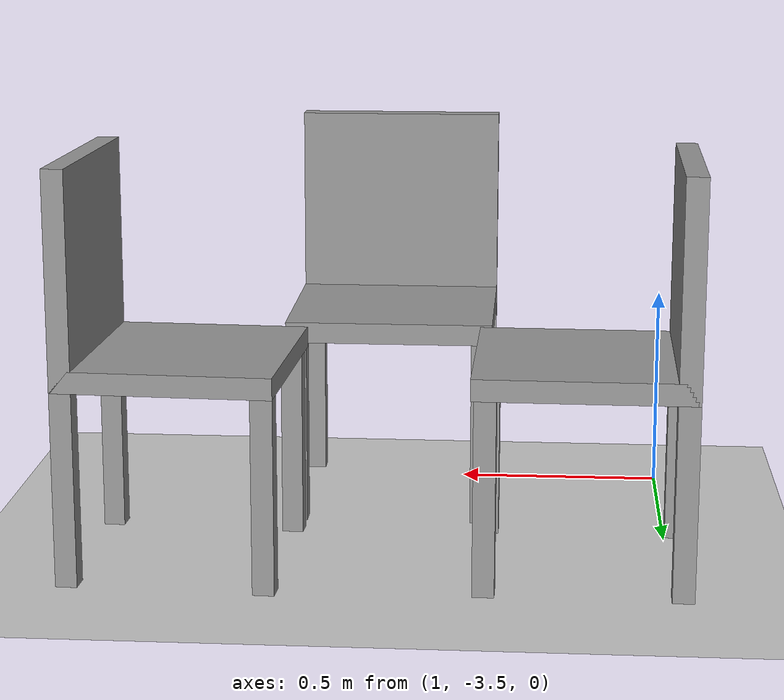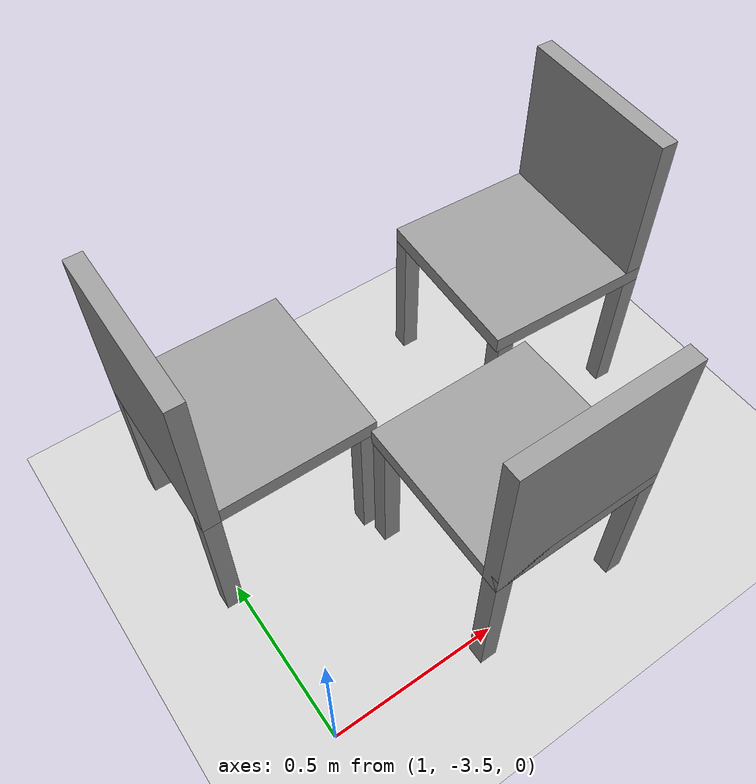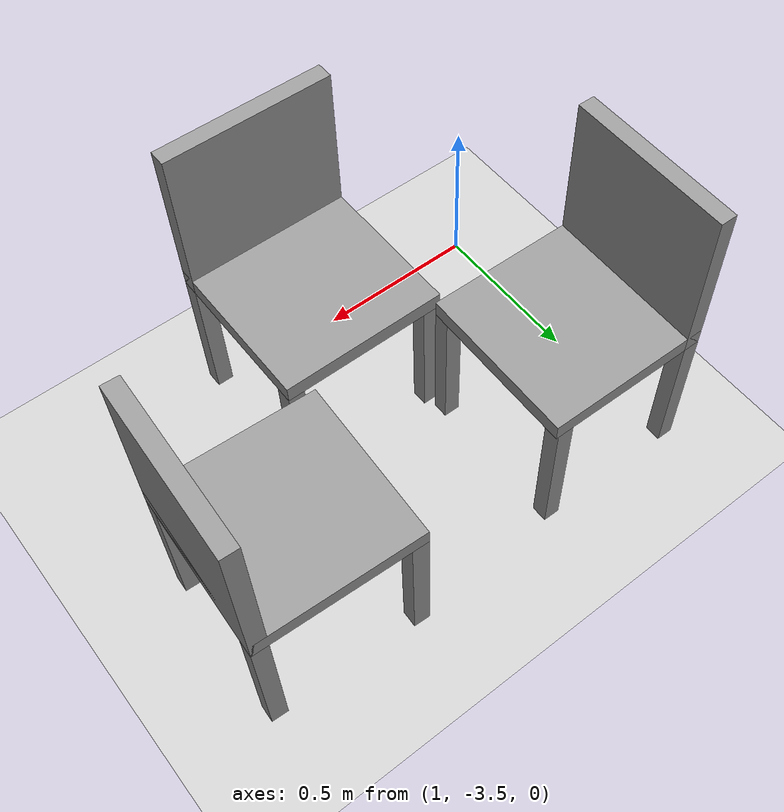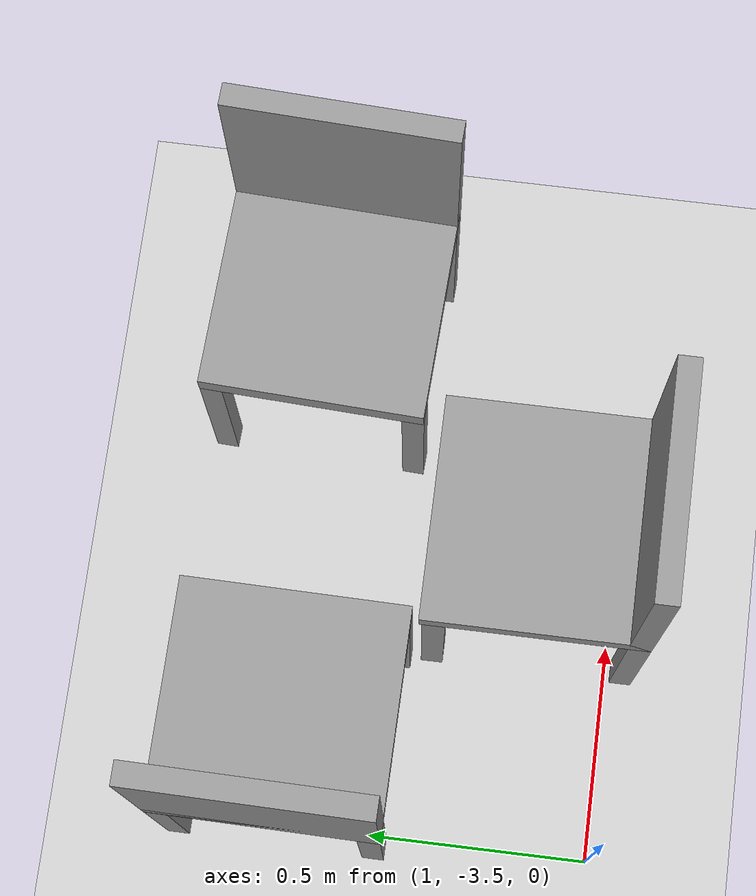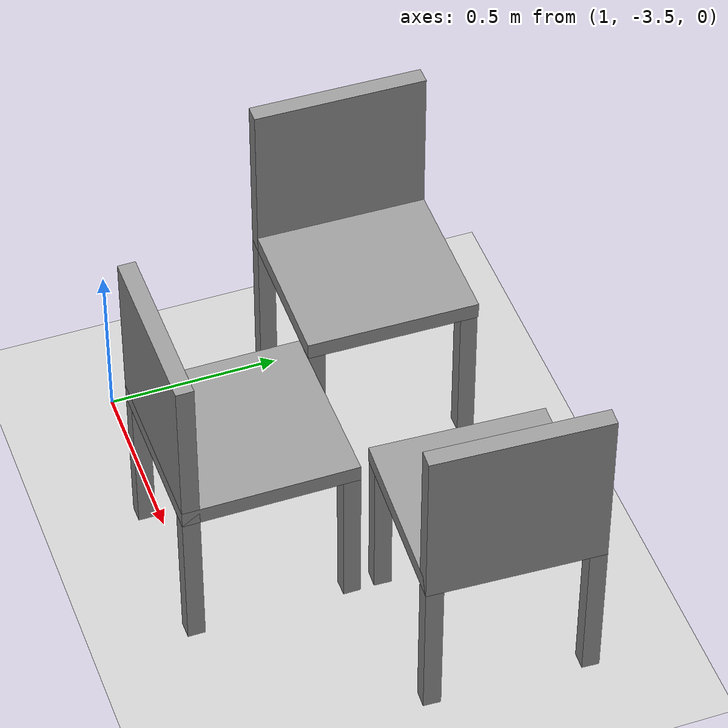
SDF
<sdf version="1.6">
 <world name="default">
  <model name="ground_plane">
   <static>1</static>
   <link name="link">
    <collision name="collision">
     <geometry><plane><normal>0 0 1</normal><size>100 100</size></plane></geometry>
     <surface><friction><ode><mu>100</mu><mu2>50</mu2></ode></friction></surface>
    </collision>
    <visual name="visual">
     <cast_shadows>0</cast_shadows>
     <geometry><plane><normal>0 0 1</normal><size>100 100</size></plane></geometry>
     <material>
      <script><uri>file://media/materials/scripts/gazebo.material</uri><name>Gazebo/Grey</name></script>
     </material>
    </visual>
   </link>
  </model>
  <model name="Chair">
   <link name="link_5">
    <pose>-0.225 0.256445 -0.120833 0 -0 0</pose>
    <inertial>
     <mass>1</mass>
     <inertia>
      <ixx>0.166667</ixx>
      <ixy>0</ixy>
      <ixz>0</ixz>
      <iyy>0.166667</iyy>
      <iyz>0</iyz>
      <izz>0.166667</izz>
     </inertia>
    </inertial>
    <visual name="visual">
     <geometry><box><size>0.05 0.05 0.45</size></box></geometry>
     <material>
      <lighting>1</lighting>
      <script><uri>file://media/materials/scripts/gazebo.material</uri><name>Gazebo/Grey</name></script>
      <ambient>0.3 0.3 0.3 1</ambient>
      <diffuse>0.7 0.7 0.7 1</diffuse>
      <specular>0.01 0.01 0.01 1</specular>
      <emissive>0 0 0 1</emissive>
      <shader type="vertex"><normal_map>__default__</normal_map></shader>
     </material>
    </visual>
    <collision name="collision">
     <geometry><box><size>0.05 0.05 0.45</size></box></geometry>
     <surface>
      <friction>
       <ode><mu>1</mu><mu2>1</mu2><fdir1>0 0 0</fdir1><slip1>0</slip1><slip2>0</slip2></ode>
       <torsional>
        <coefficient>1</coefficient>
        <patch_radius>0</patch_radius>
        <surface_radius>0</surface_radius>
        <use_patch_radius>1</use_patch_radius>
        <ode><slip>0</slip></ode>
       </torsional>
      </friction>
      <bounce><restitution_coefficient>0</restitution_coefficient><threshold>1e+06</threshold></bounce>
      <contact>
       <collide_without_contact>0</collide_without_contact>
       <collide_without_contact_bitmask>1</collide_without_contact_bitmask>
       <collide_bitmask>1</collide_bitmask>
       <ode>
        <soft_cfm>0</soft_cfm>
        <soft_erp>0.2</soft_erp>
        <kp>1e+13</kp>
        <kd>1</kd>
        <max_vel>0.01</max_vel>
        <min_depth>0</min_depth>
       </ode>
       <bullet>
        <split_impulse>1</split_impulse>
        <split_impulse_penetration_threshold>-0.01</split_impulse_penetration_threshold>
        <soft_cfm>0</soft_cfm>
        <soft_erp>0.2</soft_erp>
        <kp>1e+13</kp>
        <kd>1</kd>
       </bullet>
      </contact>
     </surface>
    </collision>
   </link>
   <link name="link_5_clone">
    <pose>0.225 0.263711 -0.120833 0 -0 0</pose>
    <inertial>
     <mass>1</mass>
     <inertia>
      <ixx>0.166667</ixx>
      <ixy>0</ixy>
      <ixz>0</ixz>
      <iyy>0.166667</iyy>
      <iyz>0</iyz>
      <izz>0.166667</izz>
     </inertia>
    </inertial>
    <visual name="visual">
     <geometry><box><size>0.05 0.05 0.45</size></box></geometry>
     <material>
      <lighting>1</lighting>
      <script><uri>file://media/materials/scripts/gazebo.material</uri><name>Gazebo/Grey</name></script>
      <ambient>0.3 0.3 0.3 1</ambient>
      <diffuse>0.7 0.7 0.7 1</diffuse>
      <specular>0.01 0.01 0.01 1</specular>
      <emissive>0 0 0 1</emissive>
      <shader type="vertex"><normal_map>__default__</normal_map></shader>
     </material>
    </visual>
    <collision name="collision">
     <geometry><box><size>0.05 0.05 0.45</size></box></geometry>
     <surface>
      <friction>
       <ode><mu>1</mu><mu2>1</mu2><fdir1>0 0 0</fdir1><slip1>0</slip1><slip2>0</slip2></ode>
       <torsional>
        <coefficient>1</coefficient>
        <patch_radius>0</patch_radius>
        <surface_radius>0</surface_radius>
        <use_patch_radius>1</use_patch_radius>
        <ode><slip>0</slip></ode>
       </torsional>
      </friction>
      <bounce><restitution_coefficient>0</restitution_coefficient><threshold>1e+06</threshold></bounce>
      <contact>
       <collide_without_contact>0</collide_without_contact>
       <collide_without_contact_bitmask>1</collide_without_contact_bitmask>
       <collide_bitmask>1</collide_bitmask>
       <ode>
        <soft_cfm>0</soft_cfm>
        <soft_erp>0.2</soft_erp>
        <kp>1e+13</kp>
        <kd>1</kd>
        <max_vel>0.01</max_vel>
        <min_depth>0</min_depth>
       </ode>
       <bullet>
        <split_impulse>1</split_impulse>
        <split_impulse_penetration_threshold>-0.01</split_impulse_penetration_threshold>
        <soft_cfm>0</soft_cfm>
        <soft_erp>0.2</soft_erp>
        <kp>1e+13</kp>
        <kd>1</kd>
       </bullet>
      </contact>
     </surface>
    </collision>
   </link>
   <link name="link_5_clone_0">
    <pose>0.225 -0.186289 -0.120833 0 -0 0</pose>
    <inertial>
     <mass>1</mass>
     <inertia>
      <ixx>0.166667</ixx>
      <ixy>0</ixy>
      <ixz>0</ixz>
      <iyy>0.166667</iyy>
      <iyz>0</iyz>
      <izz>0.166667</izz>
     </inertia>
    </inertial>
    <visual name="visual">
     <geometry><box><size>0.05 0.05 0.45</size></box></geometry>
     <material>
      <lighting>1</lighting>
      <script><uri>file://media/materials/scripts/gazebo.material</uri><name>Gazebo/Grey</name></script>
      <ambient>0.3 0.3 0.3 1</ambient>
      <diffuse>0.7 0.7 0.7 1</diffuse>
      <specular>0.01 0.01 0.01 1</specular>
      <emissive>0 0 0 1</emissive>
      <shader type="vertex"><normal_map>__default__</normal_map></shader>
     </material>
    </visual>
    <collision name="collision">
     <geometry><box><size>0.05 0.05 0.45</size></box></geometry>
     <surface>
      <friction>
       <ode><mu>1</mu><mu2>1</mu2><fdir1>0 0 0</fdir1><slip1>0</slip1><slip2>0</slip2></ode>
       <torsional>
        <coefficient>1</coefficient>
        <patch_radius>0</patch_radius>
        <surface_radius>0</surface_radius>
        <use_patch_radius>1</use_patch_radius>
        <ode><slip>0</slip></ode>
       </torsional>
      </friction>
      <bounce><restitution_coefficient>0</restitution_coefficient><threshold>1e+06</threshold></bounce>
      <contact>
       <collide_without_contact>0</collide_without_contact>
       <collide_without_contact_bitmask>1</collide_without_contact_bitmask>
       <collide_bitmask>1</collide_bitmask>
       <ode>
        <soft_cfm>0</soft_cfm>
        <soft_erp>0.2</soft_erp>
        <kp>1e+13</kp>
        <kd>1</kd>
        <max_vel>0.01</max_vel>
        <min_depth>0</min_depth>
       </ode>
       <bullet>
        <split_impulse>1</split_impulse>
        <split_impulse_penetration_threshold>-0.01</split_impulse_penetration_threshold>
        <soft_cfm>0</soft_cfm>
        <soft_erp>0.2</soft_erp>
        <kp>1e+13</kp>
        <kd>1</kd>
       </bullet>
      </contact>
     </surface>
    </collision>
   </link>
   <link name="link_5_clone_1">
    <pose>-0.225 -0.186289 -0.120833 0 -0 0</pose>
    <inertial>
     <mass>1</mass>
     <inertia>
      <ixx>0.166667</ixx>
      <ixy>0</ixy>
      <ixz>0</ixz>
      <iyy>0.166667</iyy>
      <iyz>0</iyz>
      <izz>0.166667</izz>
     </inertia>
    </inertial>
    <visual name="visual">
     <geometry><box><size>0.05 0.05 0.45</size></box></geometry>
     <material>
      <lighting>1</lighting>
      <script><uri>file://media/materials/scripts/gazebo.material</uri><name>Gazebo/Grey</name></script>
      <ambient>0.3 0.3 0.3 1</ambient>
      <diffuse>0.7 0.7 0.7 1</diffuse>
      <specular>0.01 0.01 0.01 1</specular>
      <emissive>0 0 0 1</emissive>
      <shader type="vertex"><normal_map>__default__</normal_map></shader>
     </material>
    </visual>
    <collision name="collision">
     <geometry><box><size>0.05 0.05 0.45</size></box></geometry>
     <surface>
      <friction>
       <ode><mu>1</mu><mu2>1</mu2><fdir1>0 0 0</fdir1><slip1>0</slip1><slip2>0</slip2></ode>
       <torsional>
        <coefficient>1</coefficient>
        <patch_radius>0</patch_radius>
        <surface_radius>0</surface_radius>
        <use_patch_radius>1</use_patch_radius>
        <ode><slip>0</slip></ode>
       </torsional>
      </friction>
      <bounce><restitution_coefficient>0</restitution_coefficient><threshold>1e+06</threshold></bounce>
      <contact>
       <collide_without_contact>0</collide_without_contact>
       <collide_without_contact_bitmask>1</collide_without_contact_bitmask>
       <collide_bitmask>1</collide_bitmask>
       <ode>
        <soft_cfm>0</soft_cfm>
        <soft_erp>0.2</soft_erp>
        <kp>1e+13</kp>
        <kd>1</kd>
        <max_vel>0.01</max_vel>
        <min_depth>0</min_depth>
       </ode>
       <bullet>
        <split_impulse>1</split_impulse>
        <split_impulse_penetration_threshold>-0.01</split_impulse_penetration_threshold>
        <soft_cfm>0</soft_cfm>
        <soft_erp>0.2</soft_erp>
        <kp>1e+13</kp>
        <kd>1</kd>
       </bullet>
      </contact>
     </surface>
    </collision>
   </link>
   <link name="link_7">
    <pose>-0 -0.186289 0.354167 0 -0 0</pose>
    <inertial>
     <mass>1</mass>
     <inertia>
      <ixx>0.166667</ixx>
      <ixy>0</ixy>
      <ixz>0</ixz>
      <iyy>0.166667</iyy>
      <iyz>0</iyz>
      <izz>0.166667</izz>
     </inertia>
    </inertial>
    <visual name="visual">
     <geometry><box><size>0.5 0.05 0.5</size></box></geometry>
     <material>
      <lighting>1</lighting>
      <script><uri>file://media/materials/scripts/gazebo.material</uri><name>Gazebo/Grey</name></script>
      <ambient>0.3 0.3 0.3 1</ambient>
      <diffuse>0.7 0.7 0.7 1</diffuse>
      <specular>0.01 0.01 0.01 1</specular>
      <emissive>0 0 0 1</emissive>
      <shader type="vertex"><normal_map>__default__</normal_map></shader>
     </material>
    </visual>
    <collision name="collision">
     <geometry><box><size>0.5 0.05 0.5</size></box></geometry>
     <surface>
      <friction>
       <ode><mu>1</mu><mu2>1</mu2><fdir1>0 0 0</fdir1><slip1>0</slip1><slip2>0</slip2></ode>
       <torsional>
        <coefficient>1</coefficient>
        <patch_radius>0</patch_radius>
        <surface_radius>0</surface_radius>
        <use_patch_radius>1</use_patch_radius>
        <ode><slip>0</slip></ode>
       </torsional>
      </friction>
      <bounce><restitution_coefficient>0</restitution_coefficient><threshold>1e+06</threshold></bounce>
      <contact>
       <collide_without_contact>0</collide_without_contact>
       <collide_without_contact_bitmask>1</collide_without_contact_bitmask>
       <collide_bitmask>1</collide_bitmask>
       <ode>
        <soft_cfm>0</soft_cfm>
        <soft_erp>0.2</soft_erp>
        <kp>1e+13</kp>
        <kd>1</kd>
        <max_vel>0.01</max_vel>
        <min_depth>0</min_depth>
       </ode>
       <bullet>
        <split_impulse>1</split_impulse>
        <split_impulse_penetration_threshold>-0.01</split_impulse_penetration_threshold>
        <soft_cfm>0</soft_cfm>
        <soft_erp>0.2</soft_erp>
        <kp>1e+13</kp>
        <kd>1</kd>
       </bullet>
      </contact>
     </surface>
    </collision>
   </link>
   <link name="link_8">
    <pose>-0 0.038711 0.129167 0 -0 0</pose>
    <inertial>
     <mass>1</mass>
     <inertia>
      <ixx>0.166667</ixx>
      <ixy>0</ixy>
      <ixz>0</ixz>
      <iyy>0.166667</iyy>
      <iyz>0</iyz>
      <izz>0.166667</izz>
     </inertia>
    </inertial>
    <visual name="visual">
     <geometry><box><size>0.5 0.5 0.05</size></box></geometry>
     <material>
      <lighting>1</lighting>
      <script><uri>file://media/materials/scripts/gazebo.material</uri><name>Gazebo/Grey</name></script>
      <ambient>0.3 0.3 0.3 1</ambient>
      <diffuse>0.7 0.7 0.7 1</diffuse>
      <specular>0.01 0.01 0.01 1</specular>
      <emissive>0 0 0 1</emissive>
      <shader type="vertex"><normal_map>__default__</normal_map></shader>
     </material>
    </visual>
    <collision name="collision">
     <geometry><box><size>0.5 0.5 0.05</size></box></geometry>
     <surface>
      <friction>
       <ode><mu>1</mu><mu2>1</mu2><fdir1>0 0 0</fdir1><slip1>0</slip1><slip2>0</slip2></ode>
       <torsional>
        <coefficient>1</coefficient>
        <patch_radius>0</patch_radius>
        <surface_radius>0</surface_radius>
        <use_patch_radius>1</use_patch_radius>
        <ode><slip>0</slip></ode>
       </torsional>
      </friction>
      <bounce><restitution_coefficient>0</restitution_coefficient><threshold>1e+06</threshold></bounce>
      <contact>
       <collide_without_contact>0</collide_without_contact>
       <collide_without_contact_bitmask>1</collide_without_contact_bitmask>
       <collide_bitmask>1</collide_bitmask>
       <ode>
        <soft_cfm>0</soft_cfm>
        <soft_erp>0.2</soft_erp>
        <kp>1e+13</kp>
        <kd>1</kd>
        <max_vel>0.01</max_vel>
        <min_depth>0</min_depth>
       </ode>
       <bullet>
        <split_impulse>1</split_impulse>
        <split_impulse_penetration_threshold>-0.01</split_impulse_penetration_threshold>
        <soft_cfm>0</soft_cfm>
        <soft_erp>0.2</soft_erp>
        <kp>1e+13</kp>
        <kd>1</kd>
       </bullet>
      </contact>
     </surface>
    </collision>
   </link>
   <joint name="link_8_JOINT_15" type="fixed">
    <parent>link_8</parent>
    <child>link_5_clone</child>
    <physics>
     <ode><limit><cfm>0</cfm><erp>0.2</erp></limit><suspension><cfm>0</cfm><erp>0.2</erp></suspension></ode>
    </physics>
   </joint>
   <joint name="link_8_JOINT_16" type="fixed">
    <parent>link_8</parent>
    <child>link_5</child>
    <physics>
     <ode><limit><cfm>0</cfm><erp>0.2</erp></limit><suspension><cfm>0</cfm><erp>0.2</erp></suspension></ode>
    </physics>
   </joint>
   <joint name="link_8_JOINT_17" type="fixed">
    <parent>link_8</parent>
    <child>link_5</child>
    <physics>
     <ode><limit><cfm>0</cfm><erp>0.2</erp></limit><suspension><cfm>0</cfm><erp>0.2</erp></suspension></ode>
    </physics>
   </joint>
   <joint name="link_8_JOINT_18" type="fixed">
    <parent>link_8</parent>
    <child>link_5_clone_0</child>
    <physics>
     <ode><limit><cfm>0</cfm><erp>0.2</erp></limit><suspension><cfm>0</cfm><erp>0.2</erp></suspension></ode>
    </physics>
   </joint>
   <joint name="link_8_JOINT_19" type="fixed">
    <parent>link_8</parent>
    <child>link_5_clone_1</child>
    <physics>
     <ode><limit><cfm>0</cfm><erp>0.2</erp></limit><suspension><cfm>0</cfm><erp>0.2</erp></suspension></ode>
    </physics>
   </joint>
   <joint name="link_8_JOINT_20" type="fixed">
    <parent>link_8</parent>
    <child>link_7</child>
    <physics>
     <ode><limit><cfm>0</cfm><erp>0.2</erp></limit><suspension><cfm>0</cfm><erp>0.2</erp></suspension></ode>
    </physics>
   </joint>
   <static>0</static>
   <pose>1.67011 -3.35271 0.353802 0 -0 0</pose>
  </model>
  <model name="Chair_clone">
   <link name="link_5">
    <pose>-0.225 0.256445 -0.120833 0 -0 0</pose>
    <inertial>
     <mass>1</mass>
     <inertia>
      <ixx>0.166667</ixx>
      <ixy>0</ixy>
      <ixz>0</ixz>
      <iyy>0.166667</iyy>
      <iyz>0</iyz>
      <izz>0.166667</izz>
     </inertia>
    </inertial>
    <visual name="visual">
     <geometry><box><size>0.05 0.05 0.45</size></box></geometry>
     <material>
      <lighting>1</lighting>
      <script><uri>file://media/materials/scripts/gazebo.material</uri><name>Gazebo/Grey</name></script>
      <ambient>0.3 0.3 0.3 1</ambient>
      <diffuse>0.7 0.7 0.7 1</diffuse>
      <specular>0.01 0.01 0.01 1</specular>
      <emissive>0 0 0 1</emissive>
      <shader type="vertex"><normal_map>__default__</normal_map></shader>
     </material>
    </visual>
    <collision name="collision">
     <geometry><box><size>0.05 0.05 0.45</size></box></geometry>
     <surface>
      <friction>
       <ode><mu>1</mu><mu2>1</mu2><fdir1>0 0 0</fdir1><slip1>0</slip1><slip2>0</slip2></ode>
       <torsional>
        <coefficient>1</coefficient>
        <patch_radius>0</patch_radius>
        <surface_radius>0</surface_radius>
        <use_patch_radius>1</use_patch_radius>
        <ode><slip>0</slip></ode>
       </torsional>
      </friction>
      <bounce><restitution_coefficient>0</restitution_coefficient><threshold>1e+06</threshold></bounce>
      <contact>
       <collide_without_contact>0</collide_without_contact>
       <collide_without_contact_bitmask>1</collide_without_contact_bitmask>
       <collide_bitmask>1</collide_bitmask>
       <ode>
        <soft_cfm>0</soft_cfm>
        <soft_erp>0.2</soft_erp>
        <kp>1e+13</kp>
        <kd>1</kd>
        <max_vel>0.01</max_vel>
        <min_depth>0</min_depth>
       </ode>
       <bullet>
        <split_impulse>1</split_impulse>
        <split_impulse_penetration_threshold>-0.01</split_impulse_penetration_threshold>
        <soft_cfm>0</soft_cfm>
        <soft_erp>0.2</soft_erp>
        <kp>1e+13</kp>
        <kd>1</kd>
       </bullet>
      </contact>
     </surface>
    </collision>
   </link>
   <link name="link_5_clone">
    <pose>0.225 0.263711 -0.120833 0 -0 0</pose>
    <inertial>
     <mass>1</mass>
     <inertia>
      <ixx>0.166667</ixx>
      <ixy>0</ixy>
      <ixz>0</ixz>
      <iyy>0.166667</iyy>
      <iyz>0</iyz>
      <izz>0.166667</izz>
     </inertia>
    </inertial>
    <visual name="visual">
     <geometry><box><size>0.05 0.05 0.45</size></box></geometry>
     <material>
      <lighting>1</lighting>
      <script><uri>file://media/materials/scripts/gazebo.material</uri><name>Gazebo/Grey</name></script>
      <ambient>0.3 0.3 0.3 1</ambient>
      <diffuse>0.7 0.7 0.7 1</diffuse>
      <specular>0.01 0.01 0.01 1</specular>
      <emissive>0 0 0 1</emissive>
      <shader type="vertex"><normal_map>__default__</normal_map></shader>
     </material>
    </visual>
    <collision name="collision">
     <geometry><box><size>0.05 0.05 0.45</size></box></geometry>
     <surface>
      <friction>
       <ode><mu>1</mu><mu2>1</mu2><fdir1>0 0 0</fdir1><slip1>0</slip1><slip2>0</slip2></ode>
       <torsional>
        <coefficient>1</coefficient>
        <patch_radius>0</patch_radius>
        <surface_radius>0</surface_radius>
        <use_patch_radius>1</use_patch_radius>
        <ode><slip>0</slip></ode>
       </torsional>
      </friction>
      <bounce><restitution_coefficient>0</restitution_coefficient><threshold>1e+06</threshold></bounce>
      <contact>
       <collide_without_contact>0</collide_without_contact>
       <collide_without_contact_bitmask>1</collide_without_contact_bitmask>
       <collide_bitmask>1</collide_bitmask>
       <ode>
        <soft_cfm>0</soft_cfm>
        <soft_erp>0.2</soft_erp>
        <kp>1e+13</kp>
        <kd>1</kd>
        <max_vel>0.01</max_vel>
        <min_depth>0</min_depth>
       </ode>
       <bullet>
        <split_impulse>1</split_impulse>
        <split_impulse_penetration_threshold>-0.01</split_impulse_penetration_threshold>
        <soft_cfm>0</soft_cfm>
        <soft_erp>0.2</soft_erp>
        <kp>1e+13</kp>
        <kd>1</kd>
       </bullet>
      </contact>
     </surface>
    </collision>
   </link>
   <link name="link_5_clone_0">
    <pose>0.225 -0.186289 -0.120833 0 -0 0</pose>
    <inertial>
     <mass>1</mass>
     <inertia>
      <ixx>0.166667</ixx>
      <ixy>0</ixy>
      <ixz>0</ixz>
      <iyy>0.166667</iyy>
      <iyz>0</iyz>
      <izz>0.166667</izz>
     </inertia>
    </inertial>
    <visual name="visual">
     <geometry><box><size>0.05 0.05 0.45</size></box></geometry>
     <material>
      <lighting>1</lighting>
      <script><uri>file://media/materials/scripts/gazebo.material</uri><name>Gazebo/Grey</name></script>
      <ambient>0.3 0.3 0.3 1</ambient>
      <diffuse>0.7 0.7 0.7 1</diffuse>
      <specular>0.01 0.01 0.01 1</specular>
      <emissive>0 0 0 1</emissive>
      <shader type="vertex"><normal_map>__default__</normal_map></shader>
     </material>
    </visual>
    <collision name="collision">
     <geometry><box><size>0.05 0.05 0.45</size></box></geometry>
     <surface>
      <friction>
       <ode><mu>1</mu><mu2>1</mu2><fdir1>0 0 0</fdir1><slip1>0</slip1><slip2>0</slip2></ode>
       <torsional>
        <coefficient>1</coefficient>
        <patch_radius>0</patch_radius>
        <surface_radius>0</surface_radius>
        <use_patch_radius>1</use_patch_radius>
        <ode><slip>0</slip></ode>
       </torsional>
      </friction>
      <bounce><restitution_coefficient>0</restitution_coefficient><threshold>1e+06</threshold></bounce>
      <contact>
       <collide_without_contact>0</collide_without_contact>
       <collide_without_contact_bitmask>1</collide_without_contact_bitmask>
       <collide_bitmask>1</collide_bitmask>
       <ode>
        <soft_cfm>0</soft_cfm>
        <soft_erp>0.2</soft_erp>
        <kp>1e+13</kp>
        <kd>1</kd>
        <max_vel>0.01</max_vel>
        <min_depth>0</min_depth>
       </ode>
       <bullet>
        <split_impulse>1</split_impulse>
        <split_impulse_penetration_threshold>-0.01</split_impulse_penetration_threshold>
        <soft_cfm>0</soft_cfm>
        <soft_erp>0.2</soft_erp>
        <kp>1e+13</kp>
        <kd>1</kd>
       </bullet>
      </contact>
     </surface>
    </collision>
   </link>
   <link name="link_5_clone_1">
    <pose>-0.225 -0.186289 -0.120833 0 -0 0</pose>
    <inertial>
     <mass>1</mass>
     <inertia>
      <ixx>0.166667</ixx>
      <ixy>0</ixy>
      <ixz>0</ixz>
      <iyy>0.166667</iyy>
      <iyz>0</iyz>
      <izz>0.166667</izz>
     </inertia>
    </inertial>
    <visual name="visual">
     <geometry><box><size>0.05 0.05 0.45</size></box></geometry>
     <material>
      <lighting>1</lighting>
      <script><uri>file://media/materials/scripts/gazebo.material</uri><name>Gazebo/Grey</name></script>
      <ambient>0.3 0.3 0.3 1</ambient>
      <diffuse>0.7 0.7 0.7 1</diffuse>
      <specular>0.01 0.01 0.01 1</specular>
      <emissive>0 0 0 1</emissive>
      <shader type="vertex"><normal_map>__default__</normal_map></shader>
     </material>
    </visual>
    <collision name="collision">
     <geometry><box><size>0.05 0.05 0.45</size></box></geometry>
     <surface>
      <friction>
       <ode><mu>1</mu><mu2>1</mu2><fdir1>0 0 0</fdir1><slip1>0</slip1><slip2>0</slip2></ode>
       <torsional>
        <coefficient>1</coefficient>
        <patch_radius>0</patch_radius>
        <surface_radius>0</surface_radius>
        <use_patch_radius>1</use_patch_radius>
        <ode><slip>0</slip></ode>
       </torsional>
      </friction>
      <bounce><restitution_coefficient>0</restitution_coefficient><threshold>1e+06</threshold></bounce>
      <contact>
       <collide_without_contact>0</collide_without_contact>
       <collide_without_contact_bitmask>1</collide_without_contact_bitmask>
       <collide_bitmask>1</collide_bitmask>
       <ode>
        <soft_cfm>0</soft_cfm>
        <soft_erp>0.2</soft_erp>
        <kp>1e+13</kp>
        <kd>1</kd>
        <max_vel>0.01</max_vel>
        <min_depth>0</min_depth>
       </ode>
       <bullet>
        <split_impulse>1</split_impulse>
        <split_impulse_penetration_threshold>-0.01</split_impulse_penetration_threshold>
        <soft_cfm>0</soft_cfm>
        <soft_erp>0.2</soft_erp>
        <kp>1e+13</kp>
        <kd>1</kd>
       </bullet>
      </contact>
     </surface>
    </collision>
   </link>
   <link name="link_7">
    <pose>-0 -0.186289 0.354167 0 -0 0</pose>
    <inertial>
     <mass>1</mass>
     <inertia>
      <ixx>0.166667</ixx>
      <ixy>0</ixy>
      <ixz>0</ixz>
      <iyy>0.166667</iyy>
      <iyz>0</iyz>
      <izz>0.166667</izz>
     </inertia>
    </inertial>
    <visual name="visual">
     <geometry><box><size>0.5 0.05 0.5</size></box></geometry>
     <material>
      <lighting>1</lighting>
      <script><uri>file://media/materials/scripts/gazebo.material</uri><name>Gazebo/Grey</name></script>
      <ambient>0.3 0.3 0.3 1</ambient>
      <diffuse>0.7 0.7 0.7 1</diffuse>
      <specular>0.01 0.01 0.01 1</specular>
      <emissive>0 0 0 1</emissive>
      <shader type="vertex"><normal_map>__default__</normal_map></shader>
     </material>
    </visual>
    <collision name="collision">
     <geometry><box><size>0.5 0.05 0.5</size></box></geometry>
     <surface>
      <friction>
       <ode><mu>1</mu><mu2>1</mu2><fdir1>0 0 0</fdir1><slip1>0</slip1><slip2>0</slip2></ode>
       <torsional>
        <coefficient>1</coefficient>
        <patch_radius>0</patch_radius>
        <surface_radius>0</surface_radius>
        <use_patch_radius>1</use_patch_radius>
        <ode><slip>0</slip></ode>
       </torsional>
      </friction>
      <bounce><restitution_coefficient>0</restitution_coefficient><threshold>1e+06</threshold></bounce>
      <contact>
       <collide_without_contact>0</collide_without_contact>
       <collide_without_contact_bitmask>1</collide_without_contact_bitmask>
       <collide_bitmask>1</collide_bitmask>
       <ode>
        <soft_cfm>0</soft_cfm>
        <soft_erp>0.2</soft_erp>
        <kp>1e+13</kp>
        <kd>1</kd>
        <max_vel>0.01</max_vel>
        <min_depth>0</min_depth>
       </ode>
       <bullet>
        <split_impulse>1</split_impulse>
        <split_impulse_penetration_threshold>-0.01</split_impulse_penetration_threshold>
        <soft_cfm>0</soft_cfm>
        <soft_erp>0.2</soft_erp>
        <kp>1e+13</kp>
        <kd>1</kd>
       </bullet>
      </contact>
     </surface>
    </collision>
   </link>
   <link name="link_8">
    <pose>-0 0.038711 0.129167 0 -0 0</pose>
    <inertial>
     <mass>1</mass>
     <inertia>
      <ixx>0.166667</ixx>
      <ixy>0</ixy>
      <ixz>0</ixz>
      <iyy>0.166667</iyy>
      <iyz>0</iyz>
      <izz>0.166667</izz>
     </inertia>
    </inertial>
    <visual name="visual">
     <geometry><box><size>0.5 0.5 0.05</size></box></geometry>
     <material>
      <lighting>1</lighting>
      <script><uri>file://media/materials/scripts/gazebo.material</uri><name>Gazebo/Grey</name></script>
      <ambient>0.3 0.3 0.3 1</ambient>
      <diffuse>0.7 0.7 0.7 1</diffuse>
      <specular>0.01 0.01 0.01 1</specular>
      <emissive>0 0 0 1</emissive>
      <shader type="vertex"><normal_map>__default__</normal_map></shader>
     </material>
    </visual>
    <collision name="collision">
     <geometry><box><size>0.5 0.5 0.05</size></box></geometry>
     <surface>
      <friction>
       <ode><mu>1</mu><mu2>1</mu2><fdir1>0 0 0</fdir1><slip1>0</slip1><slip2>0</slip2></ode>
       <torsional>
        <coefficient>1</coefficient>
        <patch_radius>0</patch_radius>
        <surface_radius>0</surface_radius>
        <use_patch_radius>1</use_patch_radius>
        <ode><slip>0</slip></ode>
       </torsional>
      </friction>
      <bounce><restitution_coefficient>0</restitution_coefficient><threshold>1e+06</threshold></bounce>
      <contact>
       <collide_without_contact>0</collide_without_contact>
       <collide_without_contact_bitmask>1</collide_without_contact_bitmask>
       <collide_bitmask>1</collide_bitmask>
       <ode>
        <soft_cfm>0</soft_cfm>
        <soft_erp>0.2</soft_erp>
        <kp>1e+13</kp>
        <kd>1</kd>
        <max_vel>0.01</max_vel>
        <min_depth>0</min_depth>
       </ode>
       <bullet>
        <split_impulse>1</split_impulse>
        <split_impulse_penetration_threshold>-0.01</split_impulse_penetration_threshold>
        <soft_cfm>0</soft_cfm>
        <soft_erp>0.2</soft_erp>
        <kp>1e+13</kp>
        <kd>1</kd>
       </bullet>
      </contact>
     </surface>
    </collision>
   </link>
   <joint name="link_8_JOINT_15" type="fixed">
    <parent>link_8</parent>
    <child>link_5_clone</child>
    <physics>
     <ode><limit><cfm>0</cfm><erp>0.2</erp></limit><suspension><cfm>0</cfm><erp>0.2</erp></suspension></ode>
    </physics>
   </joint>
   <joint name="link_8_JOINT_16" type="fixed">
    <parent>link_8</parent>
    <child>link_5</child>
    <physics>
     <ode><limit><cfm>0</cfm><erp>0.2</erp></limit><suspension><cfm>0</cfm><erp>0.2</erp></suspension></ode>
    </physics>
   </joint>
   <joint name="link_8_JOINT_17" type="fixed">
    <parent>link_8</parent>
    <child>link_5</child>
    <physics>
     <ode><limit><cfm>0</cfm><erp>0.2</erp></limit><suspension><cfm>0</cfm><erp>0.2</erp></suspension></ode>
    </physics>
   </joint>
   <joint name="link_8_JOINT_18" type="fixed">
    <parent>link_8</parent>
    <child>link_5_clone_0</child>
    <physics>
     <ode><limit><cfm>0</cfm><erp>0.2</erp></limit><suspension><cfm>0</cfm><erp>0.2</erp></suspension></ode>
    </physics>
   </joint>
   <joint name="link_8_JOINT_19" type="fixed">
    <parent>link_8</parent>
    <child>link_5_clone_1</child>
    <physics>
     <ode><limit><cfm>0</cfm><erp>0.2</erp></limit><suspension><cfm>0</cfm><erp>0.2</erp></suspension></ode>
    </physics>
   </joint>
   <joint name="link_8_JOINT_20" type="fixed">
    <parent>link_8</parent>
    <child>link_7</child>
    <physics>
     <ode><limit><cfm>0</cfm><erp>0.2</erp></limit><suspension><cfm>0</cfm><erp>0.2</erp></suspension></ode>
    </physics>
   </joint>
   <static>0</static>
   <pose>1.16243 -2.79451 0.353802 0 0 -1.58438</pose>
  </model>
  <model name="Chair_clone_clone_0">
   <link name="link_5">
    <pose>-0.225 0.256445 -0.120833 0 -0 0</pose>
    <inertial>
     <mass>1</mass>
     <inertia>
      <ixx>0.166667</ixx>
      <ixy>0</ixy>
      <ixz>0</ixz>
      <iyy>0.166667</iyy>
      <iyz>0</iyz>
      <izz>0.166667</izz>
     </inertia>
    </inertial>
    <visual name="visual">
     <geometry><box><size>0.05 0.05 0.45</size></box></geometry>
     <material>
      <lighting>1</lighting>
      <script><uri>file://media/materials/scripts/gazebo.material</uri><name>Gazebo/Grey</name></script>
      <ambient>0.3 0.3 0.3 1</ambient>
      <diffuse>0.7 0.7 0.7 1</diffuse>
      <specular>0.01 0.01 0.01 1</specular>
      <emissive>0 0 0 1</emissive>
      <shader type="vertex"><normal_map>__default__</normal_map></shader>
     </material>
    </visual>
    <collision name="collision">
     <geometry><box><size>0.05 0.05 0.45</size></box></geometry>
     <surface>
      <friction>
       <ode><mu>1</mu><mu2>1</mu2><fdir1>0 0 0</fdir1><slip1>0</slip1><slip2>0</slip2></ode>
       <torsional>
        <coefficient>1</coefficient>
        <patch_radius>0</patch_radius>
        <surface_radius>0</surface_radius>
        <use_patch_radius>1</use_patch_radius>
        <ode><slip>0</slip></ode>
       </torsional>
      </friction>
      <bounce><restitution_coefficient>0</restitution_coefficient><threshold>1e+06</threshold></bounce>
      <contact>
       <collide_without_contact>0</collide_without_contact>
       <collide_without_contact_bitmask>1</collide_without_contact_bitmask>
       <collide_bitmask>1</collide_bitmask>
       <ode>
        <soft_cfm>0</soft_cfm>
        <soft_erp>0.2</soft_erp>
        <kp>1e+13</kp>
        <kd>1</kd>
        <max_vel>0.01</max_vel>
        <min_depth>0</min_depth>
       </ode>
       <bullet>
        <split_impulse>1</split_impulse>
        <split_impulse_penetration_threshold>-0.01</split_impulse_penetration_threshold>
        <soft_cfm>0</soft_cfm>
        <soft_erp>0.2</soft_erp>
        <kp>1e+13</kp>
        <kd>1</kd>
       </bullet>
      </contact>
     </surface>
    </collision>
   </link>
   <link name="link_5_clone">
    <pose>0.225 0.263711 -0.120833 0 -0 0</pose>
    <inertial>
     <mass>1</mass>
     <inertia>
      <ixx>0.166667</ixx>
      <ixy>0</ixy>
      <ixz>0</ixz>
      <iyy>0.166667</iyy>
      <iyz>0</iyz>
      <izz>0.166667</izz>
     </inertia>
    </inertial>
    <visual name="visual">
     <geometry><box><size>0.05 0.05 0.45</size></box></geometry>
     <material>
      <lighting>1</lighting>
      <script><uri>file://media/materials/scripts/gazebo.material</uri><name>Gazebo/Grey</name></script>
      <ambient>0.3 0.3 0.3 1</ambient>
      <diffuse>0.7 0.7 0.7 1</diffuse>
      <specular>0.01 0.01 0.01 1</specular>
      <emissive>0 0 0 1</emissive>
      <shader type="vertex"><normal_map>__default__</normal_map></shader>
     </material>
    </visual>
    <collision name="collision">
     <geometry><box><size>0.05 0.05 0.45</size></box></geometry>
     <surface>
      <friction>
       <ode><mu>1</mu><mu2>1</mu2><fdir1>0 0 0</fdir1><slip1>0</slip1><slip2>0</slip2></ode>
       <torsional>
        <coefficient>1</coefficient>
        <patch_radius>0</patch_radius>
        <surface_radius>0</surface_radius>
        <use_patch_radius>1</use_patch_radius>
        <ode><slip>0</slip></ode>
       </torsional>
      </friction>
      <bounce><restitution_coefficient>0</restitution_coefficient><threshold>1e+06</threshold></bounce>
      <contact>
       <collide_without_contact>0</collide_without_contact>
       <collide_without_contact_bitmask>1</collide_without_contact_bitmask>
       <collide_bitmask>1</collide_bitmask>
       <ode>
        <soft_cfm>0</soft_cfm>
        <soft_erp>0.2</soft_erp>
        <kp>1e+13</kp>
        <kd>1</kd>
        <max_vel>0.01</max_vel>
        <min_depth>0</min_depth>
       </ode>
       <bullet>
        <split_impulse>1</split_impulse>
        <split_impulse_penetration_threshold>-0.01</split_impulse_penetration_threshold>
        <soft_cfm>0</soft_cfm>
        <soft_erp>0.2</soft_erp>
        <kp>1e+13</kp>
        <kd>1</kd>
       </bullet>
      </contact>
     </surface>
    </collision>
   </link>
   <link name="link_5_clone_0">
    <pose>0.225 -0.186289 -0.120833 0 -0 0</pose>
    <inertial>
     <mass>1</mass>
     <inertia>
      <ixx>0.166667</ixx>
      <ixy>0</ixy>
      <ixz>0</ixz>
      <iyy>0.166667</iyy>
      <iyz>0</iyz>
      <izz>0.166667</izz>
     </inertia>
    </inertial>
    <visual name="visual">
     <geometry><box><size>0.05 0.05 0.45</size></box></geometry>
     <material>
      <lighting>1</lighting>
      <script><uri>file://media/materials/scripts/gazebo.material</uri><name>Gazebo/Grey</name></script>
      <ambient>0.3 0.3 0.3 1</ambient>
      <diffuse>0.7 0.7 0.7 1</diffuse>
      <specular>0.01 0.01 0.01 1</specular>
      <emissive>0 0 0 1</emissive>
      <shader type="vertex"><normal_map>__default__</normal_map></shader>
     </material>
    </visual>
    <collision name="collision">
     <geometry><box><size>0.05 0.05 0.45</size></box></geometry>
     <surface>
      <friction>
       <ode><mu>1</mu><mu2>1</mu2><fdir1>0 0 0</fdir1><slip1>0</slip1><slip2>0</slip2></ode>
       <torsional>
        <coefficient>1</coefficient>
        <patch_radius>0</patch_radius>
        <surface_radius>0</surface_radius>
        <use_patch_radius>1</use_patch_radius>
        <ode><slip>0</slip></ode>
       </torsional>
      </friction>
      <bounce><restitution_coefficient>0</restitution_coefficient><threshold>1e+06</threshold></bounce>
      <contact>
       <collide_without_contact>0</collide_without_contact>
       <collide_without_contact_bitmask>1</collide_without_contact_bitmask>
       <collide_bitmask>1</collide_bitmask>
       <ode>
        <soft_cfm>0</soft_cfm>
        <soft_erp>0.2</soft_erp>
        <kp>1e+13</kp>
        <kd>1</kd>
        <max_vel>0.01</max_vel>
        <min_depth>0</min_depth>
       </ode>
       <bullet>
        <split_impulse>1</split_impulse>
        <split_impulse_penetration_threshold>-0.01</split_impulse_penetration_threshold>
        <soft_cfm>0</soft_cfm>
        <soft_erp>0.2</soft_erp>
        <kp>1e+13</kp>
        <kd>1</kd>
       </bullet>
      </contact>
     </surface>
    </collision>
   </link>
   <link name="link_5_clone_1">
    <pose>-0.225 -0.186289 -0.120833 0 -0 0</pose>
    <inertial>
     <mass>1</mass>
     <inertia>
      <ixx>0.166667</ixx>
      <ixy>0</ixy>
      <ixz>0</ixz>
      <iyy>0.166667</iyy>
      <iyz>0</iyz>
      <izz>0.166667</izz>
     </inertia>
    </inertial>
    <visual name="visual">
     <geometry><box><size>0.05 0.05 0.45</size></box></geometry>
     <material>
      <lighting>1</lighting>
      <script><uri>file://media/materials/scripts/gazebo.material</uri><name>Gazebo/Grey</name></script>
      <ambient>0.3 0.3 0.3 1</ambient>
      <diffuse>0.7 0.7 0.7 1</diffuse>
      <specular>0.01 0.01 0.01 1</specular>
      <emissive>0 0 0 1</emissive>
      <shader type="vertex"><normal_map>__default__</normal_map></shader>
     </material>
    </visual>
    <collision name="collision">
     <geometry><box><size>0.05 0.05 0.45</size></box></geometry>
     <surface>
      <friction>
       <ode><mu>1</mu><mu2>1</mu2><fdir1>0 0 0</fdir1><slip1>0</slip1><slip2>0</slip2></ode>
       <torsional>
        <coefficient>1</coefficient>
        <patch_radius>0</patch_radius>
        <surface_radius>0</surface_radius>
        <use_patch_radius>1</use_patch_radius>
        <ode><slip>0</slip></ode>
       </torsional>
      </friction>
      <bounce><restitution_coefficient>0</restitution_coefficient><threshold>1e+06</threshold></bounce>
      <contact>
       <collide_without_contact>0</collide_without_contact>
       <collide_without_contact_bitmask>1</collide_without_contact_bitmask>
       <collide_bitmask>1</collide_bitmask>
       <ode>
        <soft_cfm>0</soft_cfm>
        <soft_erp>0.2</soft_erp>
        <kp>1e+13</kp>
        <kd>1</kd>
        <max_vel>0.01</max_vel>
        <min_depth>0</min_depth>
       </ode>
       <bullet>
        <split_impulse>1</split_impulse>
        <split_impulse_penetration_threshold>-0.01</split_impulse_penetration_threshold>
        <soft_cfm>0</soft_cfm>
        <soft_erp>0.2</soft_erp>
        <kp>1e+13</kp>
        <kd>1</kd>
       </bullet>
      </contact>
     </surface>
    </collision>
   </link>
   <link name="link_7">
    <pose>-0 -0.186289 0.354167 0 -0 0</pose>
    <inertial>
     <mass>1</mass>
     <inertia>
      <ixx>0.166667</ixx>
      <ixy>0</ixy>
      <ixz>0</ixz>
      <iyy>0.166667</iyy>
      <iyz>0</iyz>
      <izz>0.166667</izz>
     </inertia>
    </inertial>
    <visual name="visual">
     <geometry><box><size>0.5 0.05 0.5</size></box></geometry>
     <material>
      <lighting>1</lighting>
      <script><uri>file://media/materials/scripts/gazebo.material</uri><name>Gazebo/Grey</name></script>
      <ambient>0.3 0.3 0.3 1</ambient>
      <diffuse>0.7 0.7 0.7 1</diffuse>
      <specular>0.01 0.01 0.01 1</specular>
      <emissive>0 0 0 1</emissive>
      <shader type="vertex"><normal_map>__default__</normal_map></shader>
     </material>
    </visual>
    <collision name="collision">
     <geometry><box><size>0.5 0.05 0.5</size></box></geometry>
     <surface>
      <friction>
       <ode><mu>1</mu><mu2>1</mu2><fdir1>0 0 0</fdir1><slip1>0</slip1><slip2>0</slip2></ode>
       <torsional>
        <coefficient>1</coefficient>
        <patch_radius>0</patch_radius>
        <surface_radius>0</surface_radius>
        <use_patch_radius>1</use_patch_radius>
        <ode><slip>0</slip></ode>
       </torsional>
      </friction>
      <bounce><restitution_coefficient>0</restitution_coefficient><threshold>1e+06</threshold></bounce>
      <contact>
       <collide_without_contact>0</collide_without_contact>
       <collide_without_contact_bitmask>1</collide_without_contact_bitmask>
       <collide_bitmask>1</collide_bitmask>
       <ode>
        <soft_cfm>0</soft_cfm>
        <soft_erp>0.2</soft_erp>
        <kp>1e+13</kp>
        <kd>1</kd>
        <max_vel>0.01</max_vel>
        <min_depth>0</min_depth>
       </ode>
       <bullet>
        <split_impulse>1</split_impulse>
        <split_impulse_penetration_threshold>-0.01</split_impulse_penetration_threshold>
        <soft_cfm>0</soft_cfm>
        <soft_erp>0.2</soft_erp>
        <kp>1e+13</kp>
        <kd>1</kd>
       </bullet>
      </contact>
     </surface>
    </collision>
   </link>
   <link name="link_8">
    <pose>-0 0.038711 0.129167 0 -0 0</pose>
    <inertial>
     <mass>1</mass>
     <inertia>
      <ixx>0.166667</ixx>
      <ixy>0</ixy>
      <ixz>0</ixz>
      <iyy>0.166667</iyy>
      <iyz>0</iyz>
      <izz>0.166667</izz>
     </inertia>
    </inertial>
    <visual name="visual">
     <geometry><box><size>0.5 0.5 0.05</size></box></geometry>
     <material>
      <lighting>1</lighting>
      <script><uri>file://media/materials/scripts/gazebo.material</uri><name>Gazebo/Grey</name></script>
      <ambient>0.3 0.3 0.3 1</ambient>
      <diffuse>0.7 0.7 0.7 1</diffuse>
      <specular>0.01 0.01 0.01 1</specular>
      <emissive>0 0 0 1</emissive>
      <shader type="vertex"><normal_map>__default__</normal_map></shader>
     </material>
    </visual>
    <collision name="collision">
     <geometry><box><size>0.5 0.5 0.05</size></box></geometry>
     <surface>
      <friction>
       <ode><mu>1</mu><mu2>1</mu2><fdir1>0 0 0</fdir1><slip1>0</slip1><slip2>0</slip2></ode>
       <torsional>
        <coefficient>1</coefficient>
        <patch_radius>0</patch_radius>
        <surface_radius>0</surface_radius>
        <use_patch_radius>1</use_patch_radius>
        <ode><slip>0</slip></ode>
       </torsional>
      </friction>
      <bounce><restitution_coefficient>0</restitution_coefficient><threshold>1e+06</threshold></bounce>
      <contact>
       <collide_without_contact>0</collide_without_contact>
       <collide_without_contact_bitmask>1</collide_without_contact_bitmask>
       <collide_bitmask>1</collide_bitmask>
       <ode>
        <soft_cfm>0</soft_cfm>
        <soft_erp>0.2</soft_erp>
        <kp>1e+13</kp>
        <kd>1</kd>
        <max_vel>0.01</max_vel>
        <min_depth>0</min_depth>
       </ode>
       <bullet>
        <split_impulse>1</split_impulse>
        <split_impulse_penetration_threshold>-0.01</split_impulse_penetration_threshold>
        <soft_cfm>0</soft_cfm>
        <soft_erp>0.2</soft_erp>
        <kp>1e+13</kp>
        <kd>1</kd>
       </bullet>
      </contact>
     </surface>
    </collision>
   </link>
   <joint name="link_8_JOINT_15" type="fixed">
    <parent>link_8</parent>
    <child>link_5_clone</child>
    <physics>
     <ode><limit><cfm>0</cfm><erp>0.2</erp></limit><suspension><cfm>0</cfm><erp>0.2</erp></suspension></ode>
    </physics>
   </joint>
   <joint name="link_8_JOINT_16" type="fixed">
    <parent>link_8</parent>
    <child>link_5</child>
    <physics>
     <ode><limit><cfm>0</cfm><erp>0.2</erp></limit><suspension><cfm>0</cfm><erp>0.2</erp></suspension></ode>
    </physics>
   </joint>
   <joint name="link_8_JOINT_17" type="fixed">
    <parent>link_8</parent>
    <child>link_5</child>
    <physics>
     <ode><limit><cfm>0</cfm><erp>0.2</erp></limit><suspension><cfm>0</cfm><erp>0.2</erp></suspension></ode>
    </physics>
   </joint>
   <joint name="link_8_JOINT_18" type="fixed">
    <parent>link_8</parent>
    <child>link_5_clone_0</child>
    <physics>
     <ode><limit><cfm>0</cfm><erp>0.2</erp></limit><suspension><cfm>0</cfm><erp>0.2</erp></suspension></ode>
    </physics>
   </joint>
   <joint name="link_8_JOINT_19" type="fixed">
    <parent>link_8</parent>
    <child>link_5_clone_1</child>
    <physics>
     <ode><limit><cfm>0</cfm><erp>0.2</erp></limit><suspension><cfm>0</cfm><erp>0.2</erp></suspension></ode>
    </physics>
   </joint>
   <joint name="link_8_JOINT_20" type="fixed">
    <parent>link_8</parent>
    <child>link_7</child>
    <physics>
     <ode><limit><cfm>0</cfm><erp>0.2</erp></limit><suspension><cfm>0</cfm><erp>0.2</erp></suspension></ode>
    </physics>
   </joint>
   <static>0</static>
   <pose>2.16156 -2.78558 0.353802 0 -0 1.52335</pose>
  </model>
 </world>
</sdf>
